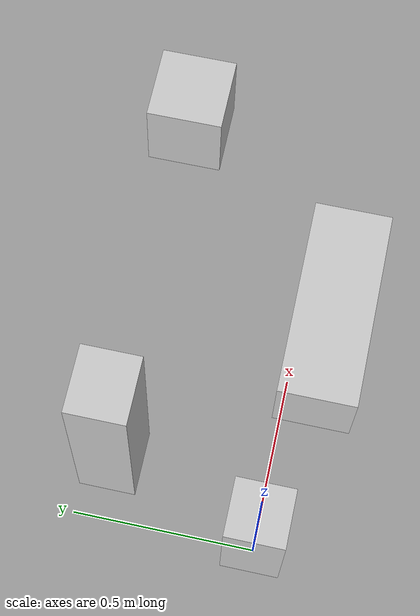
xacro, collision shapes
<?xml version="1.0"?>
<robot name="robotic_arm" xmlns:xacro="http://www.ros.org/wiki/xacro">
  <xacro:property name="mesh_package" value="package://rover_arm/meshes/" />

  <!-- Material Definitions -->
  <material name="mat_silver">
    <color rgba="0.8 0.8 0.8 1"/>
  </material>
  <!--Some inertial calculations-->

    <xacro:macro name="inertial_box" params="mass x y z *origin">
        <inertial>
            <xacro:insert_block name="origin" />
            <mass value="${mass}" />
            <inertia ixx="${(1/12) * mass * (y*y+z*z)}" ixy="0.0" ixz="0.0" iyy="${(1/12) * mass * (x*x+z*z)}" iyz="0.0" izz="${(1/12) * mass * (x*x+y*y)}" />
        </inertial>
    </xacro:macro>

  <link name="world" />

  <!-- Base Link -->
  <link name="base_link">

    <visual>
      <origin xyz="0 0 0.07" rpy="3.1415 0 0"/>
      <geometry>
        <mesh filename="${mesh_package}Joint1.stl" scale="1 1 1"/>
      </geometry>
      <material name="mat_silver"/>
    </visual>
    <visual>
      <origin xyz="0.03 0.017 0.23" rpy="-1.5707 0.16 0"/>
      <geometry>
        <mesh filename="${mesh_package}Connector1.stl" scale="1 1 1"/>
      </geometry>
      <material name="mat_silver"/>
    </visual>
    <collision>
       <origin xyz="0.022 0 0.16" rpy="0 0 0" />
      <geometry>
       <box size="0.16 0.16 0.32" />
      </geometry>
    </collision>
     <xacro:inertial_box mass="10" x="0.16" y="0.16" z="0.32">
        <origin xyz="0.022 0 0.16" rpy="0 0 0" />
     </xacro:inertial_box>

  </link>
  <link name="link1">
    <!-- Has joint 2, link 1, and connector 2; is controlled by a revolute joint of pi freedom on y or x axis (tbd). -->
    <visual>
        <origin xyz="0 0 0" rpy="-1.568 1.22 0 " />
        <geometry>
            <mesh filename="${mesh_package}Joint2.stl" scale="1 1 1"/>
        </geometry>
        <material name="mat_silver" />
    </visual>
    <visual>
        <origin xyz="0 0.01 0.19" rpy="-1.56 0 0" />
        <geometry>
            <mesh filename="${mesh_package}Link1.stl" scale="1 1 1"/>
        </geometry>
        <material name="mat_silver" />
    </visual>
    <visual>
        <origin xyz="0 0 0.363" rpy="1.568 0 0" />
        <geometry>
            <mesh filename="${mesh_package}Connector2.stl" scale="1 1 1"/>
        </geometry>
        <material name="mat_silver" />
    </visual>
    <collision>
      <origin xyz="0.03 0.2 0.42" rpy="0 0 0" />
      <geometry>
       <box size="0.16 0.14 0.53" />
      </geometry>
    </collision>
     <xacro:inertial_box mass="0.1" x="0.16" y="0.14" z="0.53">
        <origin xyz="0.03 0.2 0.42" rpy="0 0 0" />
     </xacro:inertial_box>
</link>
<link name="link2">
        <!-- Has joint 3, link 2 and connector 3, is controlled by a revolute joint of pi freedom on y or x axis (tbd). -->
    <visual>
      <origin xyz="0.01 0.1 0" rpy="1.57 -0.22 0" />
      <geometry>
        <mesh filename="${mesh_package}Joint3.stl" scale="1 1 1"/>
      </geometry>
      <material name="mat_silver" />
  </visual>
    <visual>
       <origin xyz="0.14 0.09 0" rpy="0 0 1.56" />
      <geometry>
        <mesh filename="${mesh_package}Link2.stl" scale="1 1 1"/>
      </geometry>
       <material name="mat_silver" />
   </visual>
    <visual>
      <origin xyz="0.26 0.07 0" rpy="1.55 -1.38 0" />
      <geometry>
         <mesh filename="${mesh_package}Connector3.stl" scale="1 1 1"/>
      </geometry>
       <material name="mat_silver" />
   </visual>
  <collision>
      <origin xyz="0.155 0 0.61" rpy="0 0 0" />
      <geometry>
           <box size="0.395 0.15 0.15" />
      </geometry>
   </collision>
   <xacro:inertial_box mass="0.1" x="0.395" y="0.15" z="0.15">
        <origin xyz="0.155 0 0.61" rpy="0 0 0" />
   </xacro:inertial_box>

</link>
<link name="link3">
        <!-- Has joint 4 and a possible end effector, is controlled by a revolute joint of pi freedom on x or y axis (tbd).-->

    <visual>
       <origin xyz="-0.39 0 0.194" rpy="1.557 2 0" />
       <geometry>
        <mesh filename="${mesh_package}Joint4.stl" scale="1 1 1"/>
      </geometry>
       <material name="mat_silver" />
  </visual>
  <collision>
        <origin xyz="0.29 0.16 0.62" rpy="0 0 0" />
       <geometry>
           <box size="0.15 0.15 0.17" />
      </geometry>
  </collision>
  <xacro:inertial_box mass="0.1" x="0.15" y="0.15" z="0.17">
         <origin xyz="0.29 0.16 0.62" rpy="0 0 0" />
   </xacro:inertial_box>

</link>

<joint name="joint1" type="continuous">
        <parent link="world" />
        <child link="base_link" />
        <origin xyz="0 0 0" rpy="0 0 0" />
        <axis xyz="0 0 1" />
        <limit velocity="100" effort="100" />
</joint>
<joint name="joint2" type="revolute">
        <parent link="base_link" />
        <child link="link1" />
        <origin xyz="0.03 0.18 0.24" rpy="0 0 0" />
        <axis xyz="0 -1 0" />
        <limit lower="-1.5707" upper="0" velocity="100" effort="100" />
</joint>
<joint name="joint3" type="revolute">
        <parent link="link1" />
        <child link="link2" />
        <origin xyz="0 -0.24 0.37" rpy="0 0 0" />
        <axis xyz="0 1 0" />
        <limit lower="0" upper="1.5707" velocity="100" effort="100" />
    </joint>
 <joint name="joint4" type="revolute">
        <parent link="link2" />
        <child link="link3" />
        <origin xyz="0.25 0.2 0" rpy="0 0 0" />
        <axis xyz="0 1 0" />
        <limit lower="-1.5707" upper="0" velocity="100" effort="100" />
    </joint>

    <gazebo reference="base_link">
        <material>Gazebo/Green</material>

    </gazebo>
    <gazebo reference="link1">
        <material>Gazebo/Blue</material>
    </gazebo>
    <gazebo reference="link2">
        <material>Gazebo/Orange</material>
    </gazebo>
    <gazebo reference="link3">
        <material>Gazebo/Red</material>
    </gazebo>
   <gazebo>
    <plugin name="joint1_control" filename="libgazebo_ros_control.so">
      <joint>joint1</joint>
      <commandTopic>/joint1/command</commandTopic>
    </plugin>
    <plugin name="joint2_control" filename="libgazebo_ros_control.so">
      <joint>joint2</joint>
      <commandTopic>/joint2/command</commandTopic>
    </plugin>
    <plugin name="joint3_control" filename="libgazebo_ros_control.so">
      <joint>joint3</joint>
      <commandTopic>/joint3/command</commandTopic>
    </plugin>
    <plugin name="joint4_control" filename="libgazebo_ros_control.so">
      <joint>joint4</joint>
      <commandTopic>/joint4/command</commandTopic>
    </plugin>
  </gazebo>
  <gazebo>
    <plugin name="joint_state_publisher" filename="libgazebo_ros_joint_state_publisher.so"/>
  </gazebo>

  </robot>
